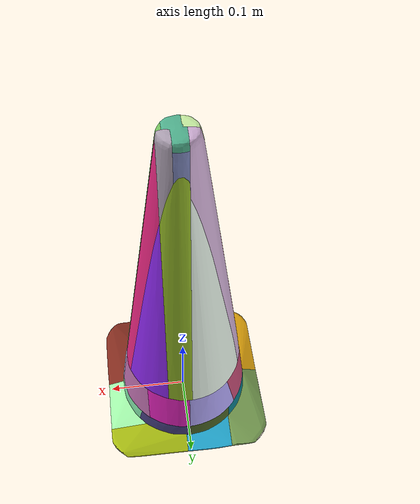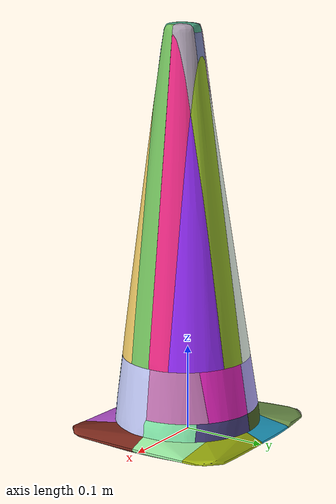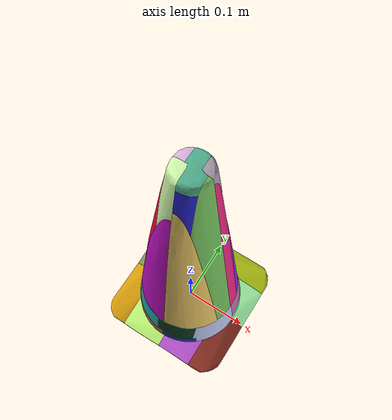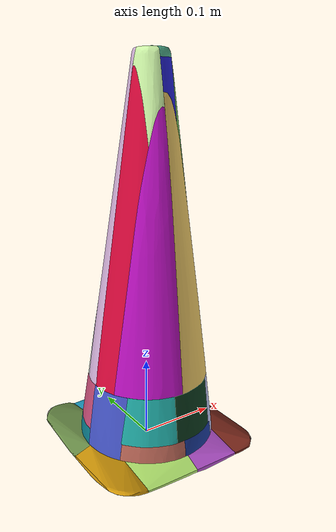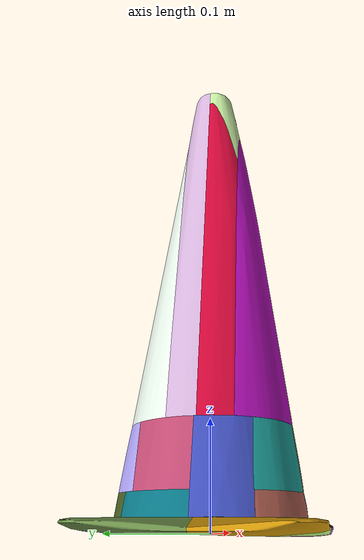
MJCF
<mujoco model="cone">
  <default>
    <default class="visual">
      <geom group="1" type="mesh" contype="0" conaffinity="0"/>
    </default>
    <default class="collision">
      <geom group="0" type="mesh" density="10"/>
    </default>
  </default>
  <asset>
    <texture type="2d" name="material_0" file="material_0.png"/>
    <material name="material_0" texture="material_0" specular="0.4000000000000001" shininess="0.000999999"/>
    <mesh name="cone" file="cone.obj"/>
    <mesh name="cone_collision_0" file="cone_collision_0.obj"/>
    <mesh name="cone_collision_1" file="cone_collision_1.obj"/>
    <mesh name="cone_collision_2" file="cone_collision_2.obj"/>
    <mesh name="cone_collision_3" file="cone_collision_3.obj"/>
    <mesh name="cone_collision_4" file="cone_collision_4.obj"/>
    <mesh name="cone_collision_5" file="cone_collision_5.obj"/>
    <mesh name="cone_collision_6" file="cone_collision_6.obj"/>
    <mesh name="cone_collision_7" file="cone_collision_7.obj"/>
    <mesh name="cone_collision_8" file="cone_collision_8.obj"/>
    <mesh name="cone_collision_9" file="cone_collision_9.obj"/>
    <mesh name="cone_collision_10" file="cone_collision_10.obj"/>
    <mesh name="cone_collision_11" file="cone_collision_11.obj"/>
    <mesh name="cone_collision_12" file="cone_collision_12.obj"/>
    <mesh name="cone_collision_13" file="cone_collision_13.obj"/>
    <mesh name="cone_collision_14" file="cone_collision_14.obj"/>
    <mesh name="cone_collision_15" file="cone_collision_15.obj"/>
    <mesh name="cone_collision_16" file="cone_collision_16.obj"/>
    <mesh name="cone_collision_17" file="cone_collision_17.obj"/>
    <mesh name="cone_collision_18" file="cone_collision_18.obj"/>
    <mesh name="cone_collision_19" file="cone_collision_19.obj"/>
    <mesh name="cone_collision_20" file="cone_collision_20.obj"/>
    <mesh name="cone_collision_21" file="cone_collision_21.obj"/>
    <mesh name="cone_collision_22" file="cone_collision_22.obj"/>
    <mesh name="cone_collision_23" file="cone_collision_23.obj"/>
    <mesh name="cone_collision_24" file="cone_collision_24.obj"/>
    <mesh name="cone_collision_25" file="cone_collision_25.obj"/>
    <mesh name="cone_collision_26" file="cone_collision_26.obj"/>
    <mesh name="cone_collision_27" file="cone_collision_27.obj"/>
    <mesh name="cone_collision_28" file="cone_collision_28.obj"/>
    <mesh name="cone_collision_29" file="cone_collision_29.obj"/>
    <mesh name="cone_collision_30" file="cone_collision_30.obj"/>
    <mesh name="cone_collision_31" file="cone_collision_31.obj"/>
    <mesh name="cone_collision_32" file="cone_collision_32.obj"/>
    <mesh name="cone_collision_33" file="cone_collision_33.obj"/>
    <mesh name="cone_collision_34" file="cone_collision_34.obj"/>
    <mesh name="cone_collision_35" file="cone_collision_35.obj"/>
  </asset>
  <worldbody>
    <body>
      <body name="object">
        <geom material="material_0" mesh="cone" class="visual"/>
        <geom mesh="cone_collision_0" rgba="0.8443257579809135 0.7112512608114421 0.8687634306901773 1" class="collision"/>
        <geom mesh="cone_collision_1" rgba="0.9273937006804708 0.9797280640283876 0.9338816777555106 1" class="collision"/>
        <geom mesh="cone_collision_2" rgba="0.9341054163827357 0.7905046435854446 0.40027953467174093 1" class="collision"/>
        <geom mesh="cone_collision_3" rgba="0.7400477454205551 0.06019582893315578 0.7566543155130162 1" class="collision"/>
        <geom mesh="cone_collision_4" rgba="0.7675773714243935 0.29522038937139794 0.45870413203128757 1" class="collision"/>
        <geom mesh="cone_collision_5" rgba="0.7673844622239506 0.45782281894304167 0.7057397785803642 1" class="collision"/>
        <geom mesh="cone_collision_6" rgba="0.5775239880289569 0.1699871435959699 0.9730078701112015 1" class="collision"/>
        <geom mesh="cone_collision_7" rgba="0.8528851974950156 0.02813678194971514 0.22914275298650322 1" class="collision"/>
        <geom mesh="cone_collision_8" rgba="0.9375239250372117 0.16065680416275274 0.5248804036980451 1" class="collision"/>
        <geom mesh="cone_collision_9" rgba="0.6016830729617897 0.7521650660977635 0.16132323742464005 1" class="collision"/>
        <geom mesh="cone_collision_10" rgba="0.1228133529484855 0.6711406470604874 0.6467647400287302 1" class="collision"/>
        <geom mesh="cone_collision_11" rgba="0.04995118595180714 0.2343860199696881 0.12099605383084777 1" class="collision"/>
        <geom mesh="cone_collision_12" rgba="0.8177960501245711 0.9770364720251252 0.6642363498041146 1" class="collision"/>
        <geom mesh="cone_collision_13" rgba="0.7042822507976308 0.6628915157632084 0.987399982835523 1" class="collision"/>
        <geom mesh="cone_collision_14" rgba="0.4537323384239329 0.7606822794565528 0.36771685744256244 1" class="collision"/>
        <geom mesh="cone_collision_15" rgba="0.2645412668988736 0.32690432655568735 0.7704281677027512 1" class="collision"/>
        <geom mesh="cone_collision_16" rgba="0.9187771928419529 0.14343575750786874 0.7586805819176053 1" class="collision"/>
        <geom mesh="cone_collision_17" rgba="0.7462993712193295 0.7761955895129534 0.9528117610329979 1" class="collision"/>
        <geom mesh="cone_collision_18" rgba="0.527594184317387 0.9275025770789753 0.6811609279887924 1" class="collision"/>
        <geom mesh="cone_collision_19" rgba="0.3205870905574729 0.7091216968933445 0.5683759622250631 1" class="collision"/>
        <geom mesh="cone_collision_20" rgba="0.7546337630709904 0.9710939815601886 0.4650227175931717 1" class="collision"/>
        <geom mesh="cone_collision_21" rgba="0.2850018391713365 0.38180096745058467 0.14047471058813144 1" class="collision"/>
        <geom mesh="cone_collision_22" rgba="0.6819873167747266 0.6336009257271684 0.7021660210437598 1" class="collision"/>
        <geom mesh="cone_collision_23" rgba="0.1532992391124074 0.14201585955218565 0.8518122121787979 1" class="collision"/>
        <geom mesh="cone_collision_24" rgba="0.44445141569085433 0.5889084093410751 0.3033827953321482 1" class="collision"/>
        <geom mesh="cone_collision_25" rgba="0.27828901591873745 0.2510324366013048 0.5075136962626267 1" class="collision"/>
        <geom mesh="cone_collision_26" rgba="0.6616106199309014 0.7399143058828994 0.06616869916811985 1" class="collision"/>
        <geom mesh="cone_collision_27" rgba="0.6369867055499504 0.9745858561523691 0.6679468691821376 1" class="collision"/>
        <geom mesh="cone_collision_28" rgba="0.7356047439683959 0.33289776216008393 0.8367937220394217 1" class="collision"/>
        <geom mesh="cone_collision_29" rgba="0.5181551605730437 0.17248008574328877 0.12029916883689584 1" class="collision"/>
        <geom mesh="cone_collision_30" rgba="0.8531802948231498 0.6178499862806759 0.03679942327665342 1" class="collision"/>
        <geom mesh="cone_collision_31" rgba="0.03373782011762194 0.4746384302357275 0.5335592454960725 1" class="collision"/>
        <geom mesh="cone_collision_32" rgba="0.0997015644416952 0.22946215680330295 0.6154551058873728 1" class="collision"/>
        <geom mesh="cone_collision_33" rgba="0.13706619411095322 0.6797511689322219 0.8430168563093 1" class="collision"/>
        <geom mesh="cone_collision_34" rgba="0.7276195479735297 0.39765729771030756 0.33641060901643893 1" class="collision"/>
        <geom mesh="cone_collision_35" rgba="0.5054474487557965 0.5437378678783892 0.7585770571075104 1" class="collision"/>
      </body>
    </body>
  </worldbody>
</mujoco>
